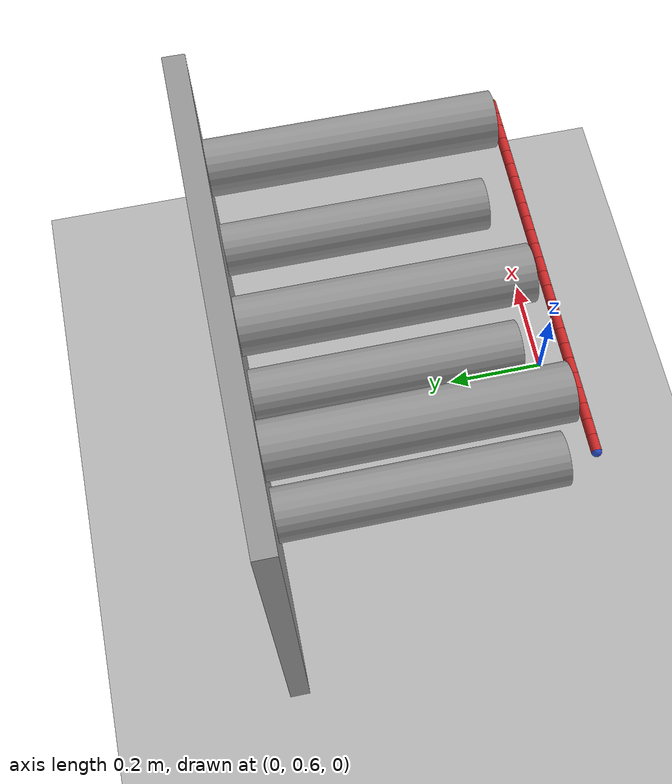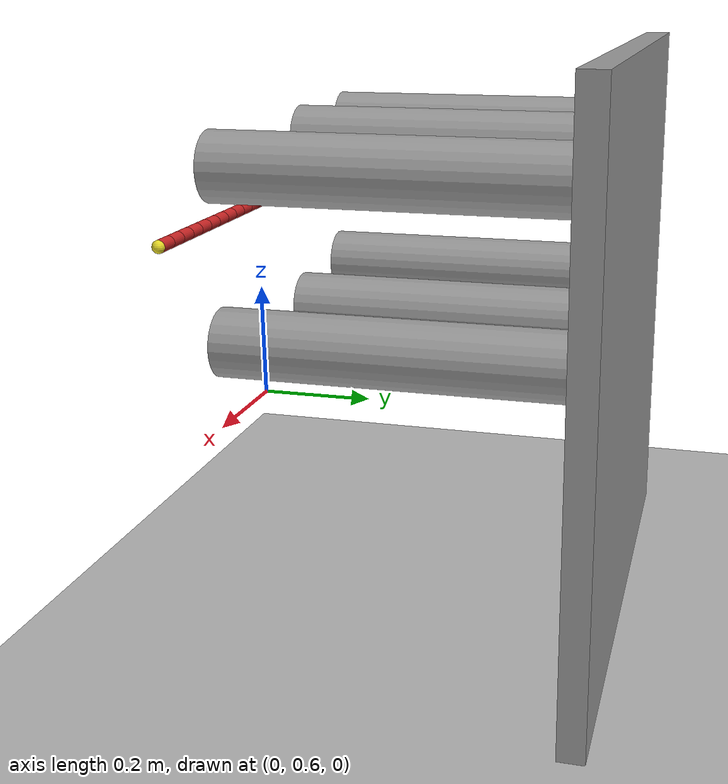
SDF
<sdf version="1.4">
 <world name="default">
  <scene>
   <grid>false</grid>
   <origin_visual>false</origin_visual>
   <sky><clouds><speed>12</speed></clouds></sky>
  </scene>
  <physics name="ode" type="ode">
   <max_step_size>0.01</max_step_size>
   <real_time_factor>1</real_time_factor>
   <real_time_update_rate>0</real_time_update_rate>
   <ode>
    <solver>
     <island_threads>2</island_threads>
     <type>quick</type>
     <iters>100</iters>
     <sor>1.0</sor>
     <use_dynamic_moi_rescaling>false</use_dynamic_moi_rescaling>
    </solver>
    <constraints><erp>0.2</erp></constraints>
   </ode>
  </physics>
  <plugin name="arm_gazebo_ros" filename="libarm_gazebo_ros_plugin.so"/>
  <plugin name="gazebo_ros_tf_plugin" filename="libgazebo_ros_tf_plugin.so"/>
  <plugin name="ros_link_attacher_plugin" filename="libgazebo_ros_link_attacher.so"/>
  <plugin name="position_3d_plugin" filename="libposition_3d_plugin.so"/>
  <plugin name="collision_map_plugin" filename="libcollision_map_plugin.so"/>
  <include><uri>model://my_ground_plane</uri><pose>0 0 -0.415 0 0 0</pose></include>
  <include><uri>model://sun</uri></include>
  <include><uri>model://hooks_rack</uri><pose>0.0 1.0 0.3 0 0 0</pose></include>
  <include><uri>model://rope_3d</uri><pose>-0.36 0.63 0.37 0 0 0</pose></include>
 </world>
</sdf>

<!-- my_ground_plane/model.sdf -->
<sdf version="1.5">
    <model name="my_ground_plane">
        <static>true</static>
            <allow_auto_disable>true</allow_auto_disable>
        <link name="link">
            <collision name="collision">
                <geometry>
                    <plane>
                        <normal>0 0 1</normal>
                        <size>4 4</size>
                    </plane>
                </geometry>
                <surface>
                    <friction>
                        <ode>
                            <mu>1000</mu>
                            <mu2>1000</mu2>
                        </ode>
                    </friction>
                    <contact>
                        <ode>
                            <kp>1e15</kp>
                            <kd>1e10</kd>
                        </ode>
                    </contact>
                </surface>
            </collision>
            <visual name="visual">
                <cast_shadows>false</cast_shadows>
                <geometry>
                    <plane>
                        <normal>0 0 1</normal>
                        <size>4 4</size>
                    </plane>
                </geometry>
                <material>
                    <script>
                        <uri>model://my_ground_plane/concrete.material</uri>
                        <name>ConcreteTexture</name>
                    </script>
                </material>
            </visual>
        </link>
    </model>
</sdf>

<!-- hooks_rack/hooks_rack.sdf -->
<sdf version='1.7'>
  <model name='hooks_rack'>
    <link name='wall'>
      <kinematic>1</kinematic>
      <inertial>
        <mass>0.0443983</mass>
        <inertia>
          <ixx>0.00370715</ixx>
          <ixy>0</ixy>
          <ixz>0</ixz>
          <iyy>0.00739972</iyy>
          <iyz>0</iyz>
          <izz>0.00370715</izz>
        </inertia>
        <pose>0 0 0 0 -0 0</pose>
      </inertial>
      <pose>-0.024451 0.252277 -0.166256 0 -0 0</pose>
      <gravity>1</gravity>
      <self_collide>0</self_collide>
      <kinematic>0</kinematic>
      <enable_wind>0</enable_wind>
      <visual name='visual'>
        <pose>0 0 0 0 -0 0</pose>
        <geometry>
          <box>
            <size>1 0.044401 1</size>
          </box>
        </geometry>
        <material>
          <lighting>1</lighting>
          <script>
            <uri>file://media/materials/scripts/gazebo.material</uri>
            <name>Gazebo/Grey</name>
          </script>
          <shader type='pixel'>
            <normal_map>__default__</normal_map>
          </shader>
        </material>
        <transparency>0</transparency>
        <cast_shadows>1</cast_shadows>
      </visual>
      <collision name='collision'>
        <laser_retro>0</laser_retro>
        <max_contacts>10</max_contacts>
        <pose>0 0 0 0 -0 0</pose>
        <geometry>
          <box>
            <size>1 0.044401 1</size>
          </box>
        </geometry>
      </collision>
    </link>
    <link name='hook1'>
      <kinematic>1</kinematic>
      <inertial>
        <mass>0.00717234</mass>
        <inertia>
          <ixx>0.000209383</ixx>
          <ixy>0</ixy>
          <ixz>0</ixz>
          <iyy>0.000209383</iyy>
          <iyz>0</iyz>
          <izz>1.10006e-05</izz>
        </inertia>
        <pose>0 0 0 0 -0 0</pose>
      </inertial>
      <pose>-0.294344 -0.05929 -0.10926 -1.5708 0 0</pose>
      <visual name='visual'>
        <pose>0 0 0 0 -0 0</pose>
        <geometry>
          <cylinder>
            <radius>0.0553851</radius>
            <length>0.58405</length>
          </cylinder>
        </geometry>
        <material>
          <lighting>1</lighting>
          <script>
            <uri>file://media/materials/scripts/gazebo.material</uri>
            <name>Gazebo/Grey</name>
          </script>
          <shader type='pixel'/>
        </material>
        <transparency>0</transparency>
        <cast_shadows>1</cast_shadows>
      </visual>
      <collision name='collision'>
        <laser_retro>0</laser_retro>
        <max_contacts>10</max_contacts>
        <pose>0 0 0 0 -0 0</pose>
        <geometry>
          <cylinder>
            <radius>0.055385</radius>
            <length>0.58405</length>
          </cylinder>
        </geometry>
      </collision>
    </link>
    <link name='hook2'>
      <kinematic>1</kinematic>
      <inertial>
        <mass>0.00717234</mass>
        <inertia>
          <ixx>0.000209383</ixx>
          <ixy>0</ixy>
          <ixz>0</ixz>
          <iyy>0.000209383</iyy>
          <iyz>0</iyz>
          <izz>1.10006e-05</izz>
        </inertia>
        <pose>0 0 0 0 -0 0</pose>
      </inertial>
      <pose>-0.024451 -0.030468 0.171288 -1.5708 0 0</pose>
      <visual name='visual'>
        <pose>0 0 0 0 -0 0</pose>
        <geometry>
          <cylinder>
            <radius>0.0553851</radius>
            <length>0.58405</length>
          </cylinder>
        </geometry>
        <material>
          <lighting>1</lighting>
          <script>
            <uri>file://media/materials/scripts/gazebo.material</uri>
            <name>Gazebo/Grey</name>
          </script>
          <shader type='pixel'/>
        </material>
        <transparency>0</transparency>
        <cast_shadows>1</cast_shadows>
      </visual>
      <collision name='collision'>
        <laser_retro>0</laser_retro>
        <max_contacts>10</max_contacts>
        <pose>0 0 0 0 -0 0</pose>
        <geometry>
          <cylinder>
            <radius>0.055385</radius>
            <length>0.58405</length>
          </cylinder>
        </geometry>
      </collision>
    </link>
    <link name='hook3'>
      <kinematic>1</kinematic>
      <inertial>
        <mass>0.00717234</mass>
        <inertia>
          <ixx>0.000209383</ixx>
          <ixy>0</ixy>
          <ixz>0</ixz>
          <iyy>0.000209383</iyy>
          <iyz>0</iyz>
          <izz>1.10006e-05</izz>
        </inertia>
        <pose>0 0 0 0 -0 0</pose>
      </inertial>
      <pose>0.329073 -0.042839 0.171287 -1.5708 0 0</pose>
      <visual name='visual'>
        <pose>0 0 0 0 -0 0</pose>
        <geometry>
          <cylinder>
            <radius>0.0553851</radius>
            <length>0.58405</length>
          </cylinder>
        </geometry>
        <material>
          <lighting>1</lighting>
          <script>
            <uri>file://media/materials/scripts/gazebo.material</uri>
            <name>Gazebo/Grey</name>
          </script>
          <shader type='pixel'/>
        </material>
        <transparency>0</transparency>
        <cast_shadows>1</cast_shadows>
      </visual>
      <collision name='collision'>
        <laser_retro>0</laser_retro>
        <max_contacts>10</max_contacts>
        <pose>0 0 0 0 -0 0</pose>
        <geometry>
          <cylinder>
            <radius>0.055385</radius>
            <length>0.58405</length>
          </cylinder>
        </geometry>
      </collision>
    </link>
    <link name='hook4'>
      <kinematic>1</kinematic>
      <inertial>
        <mass>0.00717234</mass>
        <inertia>
          <ixx>0.000209383</ixx>
          <ixy>0</ixy>
          <ixz>0</ixz>
          <iyy>0.000209383</iyy>
          <iyz>0</iyz>
          <izz>1.10006e-05</izz>
        </inertia>
        <pose>0 0 0 0 -0 0</pose>
      </inertial>
      <pose>-0.27526 -0.037634 0.171287 -1.5708 0 0</pose>
      <visual name='visual'>
        <pose>0 0 0 0 -0 0</pose>
        <geometry>
          <cylinder>
            <radius>0.0553851</radius>
            <length>0.58405</length>
          </cylinder>
        </geometry>
        <material>
          <lighting>1</lighting>
          <script>
            <uri>file://media/materials/scripts/gazebo.material</uri>
            <name>Gazebo/Grey</name>
          </script>
          <shader type='pixel'/>
        </material>
        <transparency>0</transparency>
        <cast_shadows>1</cast_shadows>
      </visual>
      <collision name='collision'>
        <laser_retro>0</laser_retro>
        <max_contacts>10</max_contacts>
        <pose>0 0 0 0 -0 0</pose>
        <geometry>
          <cylinder>
            <radius>0.055385</radius>
            <length>0.58405</length>
          </cylinder>
        </geometry>
      </collision>
    </link>
    <link name='hook5'>
      <kinematic>1</kinematic>
      <inertial>
        <mass>0.00717234</mass>
        <inertia>
          <ixx>0.000209383</ixx>
          <ixy>0</ixy>
          <ixz>0</ixz>
          <iyy>0.000209383</iyy>
          <iyz>0</iyz>
          <izz>1.10006e-05</izz>
        </inertia>
        <pose>0 0 0 0 -0 0</pose>
      </inertial>
      <pose>-0.024451 -0.036275 -0.130966 -1.5708 0 0</pose>
      <visual name='visual'>
        <pose>0 0 0 0 -0 0</pose>
        <geometry>
          <cylinder>
            <radius>0.0553851</radius>
            <length>0.58405</length>
          </cylinder>
        </geometry>
        <material>
          <lighting>1</lighting>
          <script>
            <uri>file://media/materials/scripts/gazebo.material</uri>
            <name>Gazebo/Grey</name>
          </script>
          <shader type='pixel'/>
        </material>
        <transparency>0</transparency>
        <cast_shadows>1</cast_shadows>
      </visual>
      <collision name='collision'>
        <laser_retro>0</laser_retro>
        <max_contacts>10</max_contacts>
        <pose>0 0 0 0 -0 0</pose>
        <geometry>
          <cylinder>
            <radius>0.055385</radius>
            <length>0.58405</length>
          </cylinder>
        </geometry>
      </collision>
    </link>
    <link name='hook6'>
      <kinematic>1</kinematic>
      <inertial>
        <mass>0.00717234</mass>
        <inertia>
          <ixx>0.000209383</ixx>
          <ixy>0</ixy>
          <ixz>0</ixz>
          <iyy>0.000209383</iyy>
          <iyz>0</iyz>
          <izz>1.10006e-05</izz>
        </inertia>
        <pose>0 0 0 0 -0 0</pose>
      </inertial>
      <pose>0.313885 -0.045771 -0.10738 -1.5708 0 0</pose>
      <visual name='visual'>
        <pose>0 0 0 0 -0 0</pose>
        <geometry>
          <cylinder>
            <radius>0.0553851</radius>
            <length>0.58405</length>
          </cylinder>
        </geometry>
        <material>
          <lighting>1</lighting>
          <script>
            <uri>file://media/materials/scripts/gazebo.material</uri>
            <name>Gazebo/Grey</name>
          </script>
          <shader type='pixel'/>
        </material>
        <transparency>0</transparency>
        <cast_shadows>1</cast_shadows>
      </visual>
      <collision name='collision'>
        <laser_retro>0</laser_retro>
        <max_contacts>10</max_contacts>
        <pose>0 0 0 0 -0 0</pose>
        <geometry>
          <cylinder>
            <radius>0.055385</radius>
            <length>0.58405</length>
          </cylinder>
        </geometry>
      </collision>
    </link>
    <allow_auto_disable>1</allow_auto_disable>
  </model>
</sdf>
